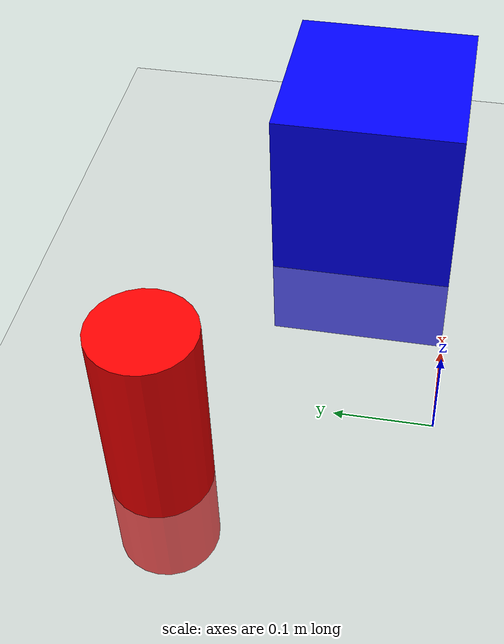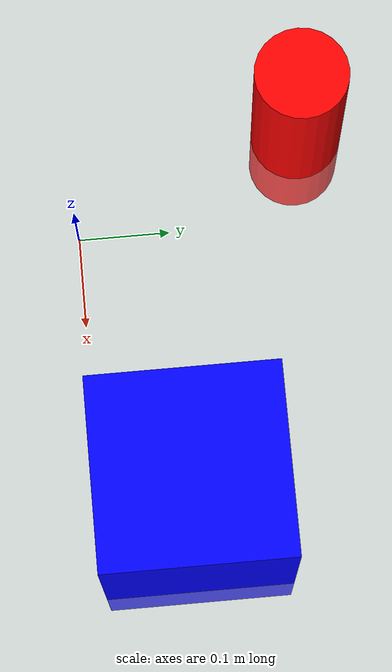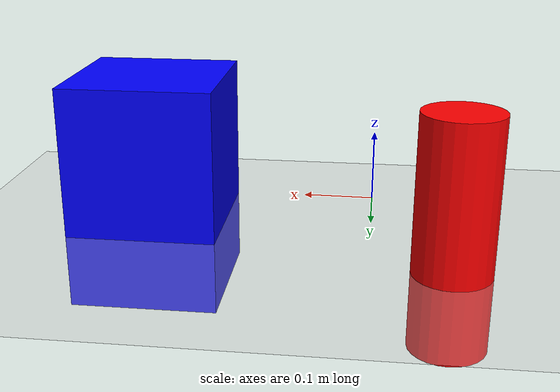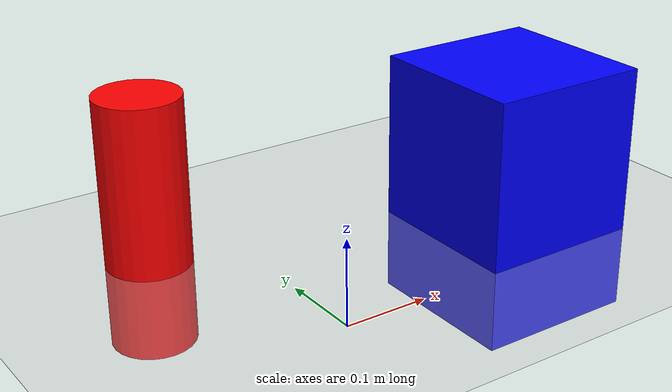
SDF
<?xml version="1.0" ?>
<sdf version="1.8">
  <world name="my_obstacle_world">

    <plugin
      filename="gz-sim-physics-system"
      name="gz::sim::systems::Physics">
    </plugin>
    <plugin
      filename="gz-sim-scene-broadcaster-system"
      name="gz::sim::systems::SceneBroadcaster">
    </plugin>

    <light type="directional" name="sun">
      <cast_shadows>true</cast_shadows>
      <pose>0 0 10 0 0 0</pose>
      <diffuse>0.8 0.8 0.8 1</diffuse>
      <specular>0.2 0.2 0.2 1</specular>
      <attenuation>
        <range>1000</range>
        <constant>0.9</constant>
        <linear>0.01</linear>
        <quadratic>0.001</quadratic>
      </attenuation>
      <direction>-0.5 0.1 -0.9</direction>
    </light>

    <model name="ground_plane">
      <static>true</static>
      <link name="link">
        <collision name="collision">
          <geometry>
            <plane>
              <normal>0 0 1</normal>
              <size>10 10</size>
            </plane>
          </geometry>
        </collision>
        <visual name="visual">
          <geometry>
            <plane>
              <normal>0 0 1</normal>
              <size>10 10</size>
            </plane>
          </geometry>
          <material>
            <ambient>0.8 0.8 0.8 1</ambient>
            <diffuse>0.8 0.8 0.8 1</diffuse>
            <specular>0.8 0.8 0.8 1</specular>
          </material>
        </visual>
      </link>
    </model>

    <model name='obstacle_cylinder_1'>
      <static>true</static> <pose>-0.1 0.25 0.05 0 0 0</pose> <link name='link'>
        <collision name='collision'>
          <geometry>
            <cylinder>
              <radius>0.05</radius> <length>0.3</length> </cylinder>
          </geometry>
        </collision>
        <visual name='visual'>
          <geometry>
            <cylinder>
              <radius>0.05</radius>
              <length>0.3</length>
            </cylinder>
          </geometry>
          <material> <ambient>1 0 0 1</ambient>
            <diffuse>1 0 0 1</diffuse>
            <specular>1 0 0 1</specular>
          </material>
        </visual>
      </link>
    </model>

    <model name='obstacle_box_1'>
      <static>true</static>
      <pose>0.3 0.1 0.05 0 0 0</pose> <link name='link'>
        <collision name='collision'>
          <geometry>
            <box>
              <size>0.2 0.2 0.3</size> </box>
          </geometry>
        </collision>
        <visual name='visual'>
          <geometry>
            <box>
              <size>0.2 0.2 0.3</size>
            </box>
          </geometry>
          <material> <ambient>0 0 1 1</ambient>
            <diffuse>0 0 1 1</diffuse>
            <specular>0 0 1 1</specular>
          </material>
        </visual>
      </link>
    </model>

    </world>
</sdf>
